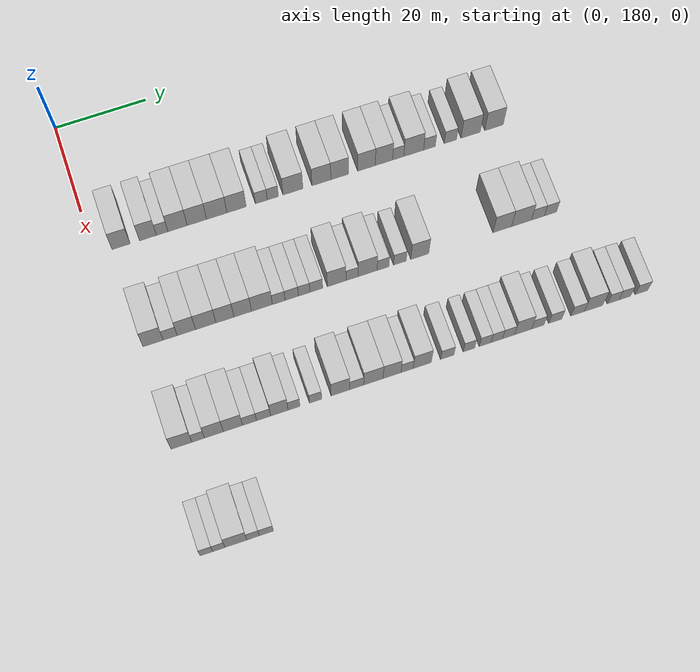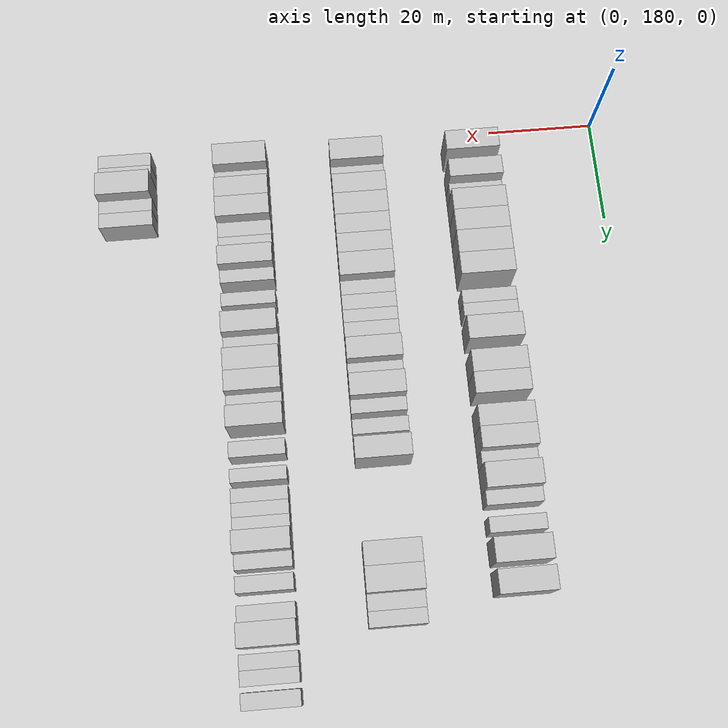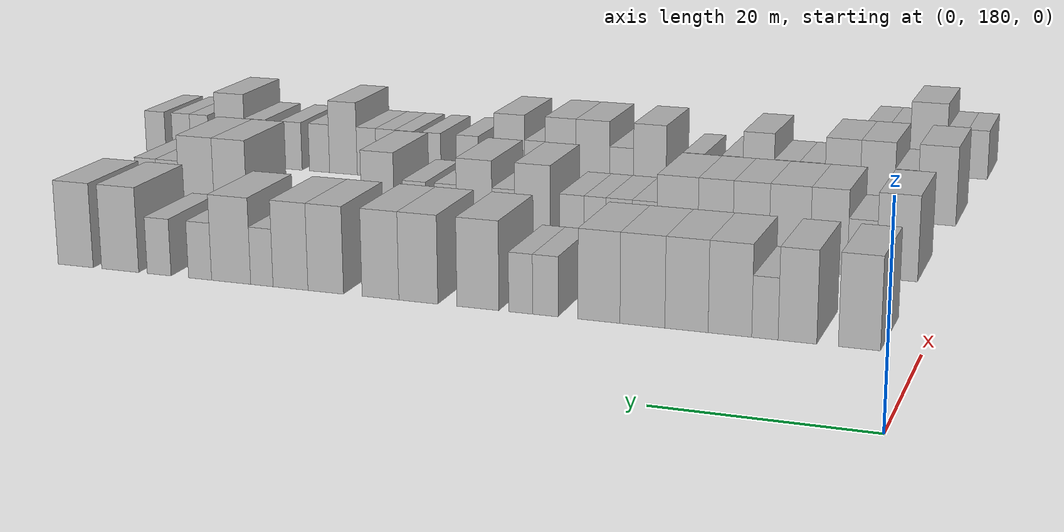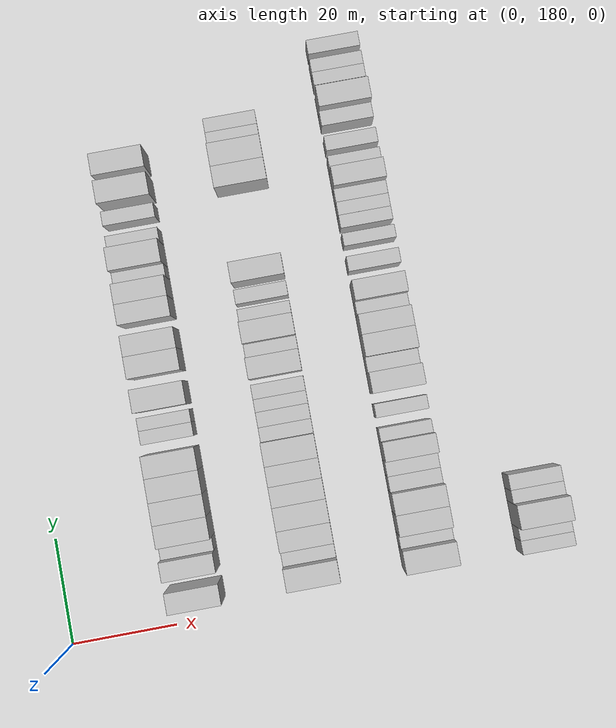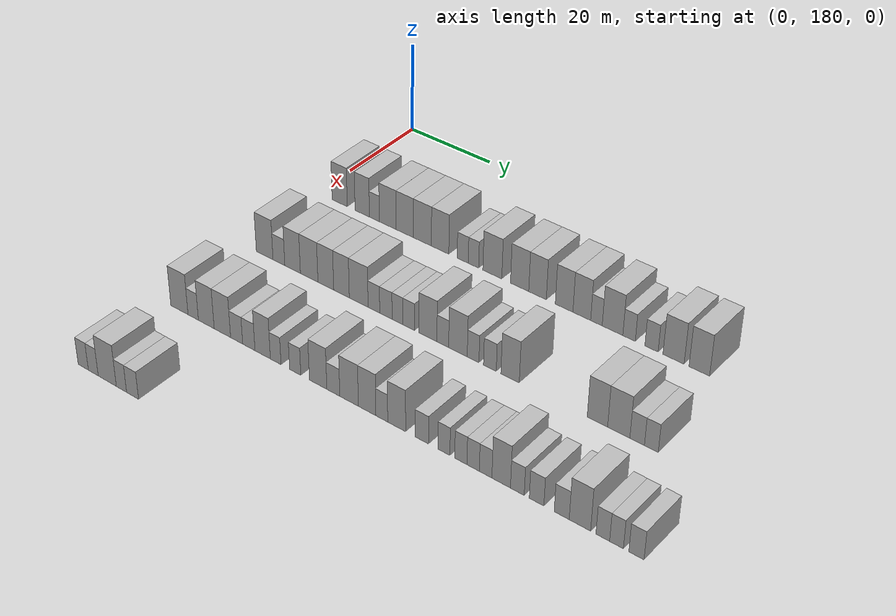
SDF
<sdf version="1.6">
 <world name="default">
  <model name="building_141">
   <static>1</static>
   <pose>25.0000 185.6581 0 0.000000 0.000000 0.000000</pose>
   <link name="link">
    <pose>0 0 4.50 0 0 0</pose>
    <collision name="collision"><geometry><box><size>10.0000 3.8897 9.0000</size></box></geometry></collision>
    <visual name="visual">
     <cast_shadows>0</cast_shadows>
     <geometry><box><size>10.0000 3.8897 9.0000</size></box></geometry>
     <material>
      <script>
       <uri>model://HANNAS_wall/materials/scripts</uri>
       <uri>model://HANNAS_wall/materials/textures</uri>
       <name>vrc/HANNAS_wall</name>
      </script>
     </material>
    </visual>
   </link>
  </model>
  <model name="building_142">
   <static>1</static>
   <pose>25.0000 191.4168 0 0.000000 0.000000 0.000000</pose>
   <link name="link">
    <pose>0 0 4.50 0 0 0</pose>
    <collision name="collision"><geometry><box><size>10.0000 3.6277 9.0000</size></box></geometry></collision>
    <visual name="visual">
     <cast_shadows>0</cast_shadows>
     <geometry><box><size>10.0000 3.6277 9.0000</size></box></geometry>
     <material>
      <script>
       <uri>model://HANNAS_wall/materials/scripts</uri>
       <uri>model://HANNAS_wall/materials/textures</uri>
       <name>vrc/HANNAS_wall</name>
      </script>
     </material>
    </visual>
   </link>
  </model>
  <model name="building_143">
   <static>1</static>
   <pose>25.0000 194.4795 0 0.000000 0.000000 0.000000</pose>
   <link name="link">
    <pose>0 0 3.00 0 0 0</pose>
    <collision name="collision"><geometry><box><size>10.0000 2.4977 6.0000</size></box></geometry></collision>
    <visual name="visual">
     <cast_shadows>0</cast_shadows>
     <geometry><box><size>10.0000 2.4977 6.0000</size></box></geometry>
     <material>
      <script>
       <uri>model://HANNAS_wall/materials/scripts</uri>
       <uri>model://HANNAS_wall/materials/textures</uri>
       <name>vrc/HANNAS_wall</name>
      </script>
     </material>
    </visual>
   </link>
  </model>
  <model name="building_144">
   <static>1</static>
   <pose>25.0000 197.8152 0 0.000000 0.000000 0.000000</pose>
   <link name="link">
    <pose>0 0 4.50 0 0 0</pose>
    <collision name="collision"><geometry><box><size>10.0000 4.1738 9.0000</size></box></geometry></collision>
    <visual name="visual">
     <cast_shadows>0</cast_shadows>
     <geometry><box><size>10.0000 4.1738 9.0000</size></box></geometry>
     <material>
      <script>
       <uri>model://HANNAS_wall/materials/scripts</uri>
       <uri>model://HANNAS_wall/materials/textures</uri>
       <name>vrc/HANNAS_wall</name>
      </script>
     </material>
    </visual>
   </link>
  </model>
  <model name="building_145">
   <static>1</static>
   <pose>25.0000 201.9993 0 0.000000 0.000000 0.000000</pose>
   <link name="link">
    <pose>0 0 4.50 0 0 0</pose>
    <collision name="collision"><geometry><box><size>10.0000 4.1942 9.0000</size></box></geometry></collision>
    <visual name="visual">
     <cast_shadows>0</cast_shadows>
     <geometry><box><size>10.0000 4.1942 9.0000</size></box></geometry>
     <material>
      <script>
       <uri>model://HANNAS_wall/materials/scripts</uri>
       <uri>model://HANNAS_wall/materials/textures</uri>
       <name>vrc/HANNAS_wall</name>
      </script>
     </material>
    </visual>
   </link>
  </model>
  <model name="building_146">
   <static>1</static>
   <pose>25.0000 206.3061 0 0.000000 0.000000 0.000000</pose>
   <link name="link">
    <pose>0 0 4.50 0 0 0</pose>
    <collision name="collision"><geometry><box><size>10.0000 4.4195 9.0000</size></box></geometry></collision>
    <visual name="visual">
     <cast_shadows>0</cast_shadows>
     <geometry><box><size>10.0000 4.4195 9.0000</size></box></geometry>
     <material>
      <script>
       <uri>model://HANNAS_wall/materials/scripts</uri>
       <uri>model://HANNAS_wall/materials/textures</uri>
       <name>vrc/HANNAS_wall</name>
      </script>
     </material>
    </visual>
   </link>
  </model>
  <model name="building_147">
   <static>1</static>
   <pose>25.0000 210.6101 0 0.000000 0.000000 0.000000</pose>
   <link name="link">
    <pose>0 0 4.50 0 0 0</pose>
    <collision name="collision"><geometry><box><size>10.0000 4.1884 9.0000</size></box></geometry></collision>
    <visual name="visual">
     <cast_shadows>0</cast_shadows>
     <geometry><box><size>10.0000 4.1884 9.0000</size></box></geometry>
     <material>
      <script>
       <uri>model://HANNAS_wall/materials/scripts</uri>
       <uri>model://HANNAS_wall/materials/textures</uri>
       <name>vrc/HANNAS_wall</name>
      </script>
     </material>
    </visual>
   </link>
  </model>
  <model name="building_148">
   <static>1</static>
   <pose>25.0000 216.0030 0 0.000000 0.000000 0.000000</pose>
   <link name="link">
    <pose>0 0 3.00 0 0 0</pose>
    <collision name="collision"><geometry><box><size>10.0000 2.5975 6.0000</size></box></geometry></collision>
    <visual name="visual">
     <cast_shadows>0</cast_shadows>
     <geometry><box><size>10.0000 2.5975 6.0000</size></box></geometry>
     <material>
      <script>
       <uri>model://HANNAS_wall/materials/scripts</uri>
       <uri>model://HANNAS_wall/materials/textures</uri>
       <name>vrc/HANNAS_wall</name>
      </script>
     </material>
    </visual>
   </link>
  </model>
  <model name="building_149">
   <static>1</static>
   <pose>25.0000 218.5219 0 0.000000 0.000000 0.000000</pose>
   <link name="link">
    <pose>0 0 3.00 0 0 0</pose>
    <collision name="collision"><geometry><box><size>10.0000 2.4403 6.0000</size></box></geometry></collision>
    <visual name="visual">
     <cast_shadows>0</cast_shadows>
     <geometry><box><size>10.0000 2.4403 6.0000</size></box></geometry>
     <material>
      <script>
       <uri>model://HANNAS_wall/materials/scripts</uri>
       <uri>model://HANNAS_wall/materials/textures</uri>
       <name>vrc/HANNAS_wall</name>
      </script>
     </material>
    </visual>
   </link>
  </model>
  <model name="building_150">
   <static>1</static>
   <pose>25.0000 222.9225 0 0.000000 0.000000 0.000000</pose>
   <link name="link">
    <pose>0 0 4.50 0 0 0</pose>
    <collision name="collision"><geometry><box><size>10.0000 4.3609 9.0000</size></box></geometry></collision>
    <visual name="visual">
     <cast_shadows>0</cast_shadows>
     <geometry><box><size>10.0000 4.3609 9.0000</size></box></geometry>
     <material>
      <script>
       <uri>model://HANNAS_wall/materials/scripts</uri>
       <uri>model://HANNAS_wall/materials/textures</uri>
       <name>vrc/HANNAS_wall</name>
      </script>
     </material>
    </visual>
   </link>
  </model>
  <model name="building_151">
   <static>1</static>
   <pose>25.0000 229.1690 0 0.000000 0.000000 0.000000</pose>
   <link name="link">
    <pose>0 0 4.50 0 0 0</pose>
    <collision name="collision"><geometry><box><size>10.0000 4.1322 9.0000</size></box></geometry></collision>
    <visual name="visual">
     <cast_shadows>0</cast_shadows>
     <geometry><box><size>10.0000 4.1322 9.0000</size></box></geometry>
     <material>
      <script>
       <uri>model://HANNAS_wall/materials/scripts</uri>
       <uri>model://HANNAS_wall/materials/textures</uri>
       <name>vrc/HANNAS_wall</name>
      </script>
     </material>
    </visual>
   </link>
  </model>
  <model name="building_152">
   <static>1</static>
   <pose>25.0000 233.2051 0 0.000000 0.000000 0.000000</pose>
   <link name="link">
    <pose>0 0 4.50 0 0 0</pose>
    <collision name="collision"><geometry><box><size>10.0000 3.9400 9.0000</size></box></geometry></collision>
    <visual name="visual">
     <cast_shadows>0</cast_shadows>
     <geometry><box><size>10.0000 3.9400 9.0000</size></box></geometry>
     <material>
      <script>
       <uri>model://HANNAS_wall/materials/scripts</uri>
       <uri>model://HANNAS_wall/materials/textures</uri>
       <name>vrc/HANNAS_wall</name>
      </script>
     </material>
    </visual>
   </link>
  </model>
  <model name="building_153">
   <static>1</static>
   <pose>25.0000 239.1184 0 0.000000 0.000000 0.000000</pose>
   <link name="link">
    <pose>0 0 4.50 0 0 0</pose>
    <collision name="collision"><geometry><box><size>10.0000 3.8865 9.0000</size></box></geometry></collision>
    <visual name="visual">
     <cast_shadows>0</cast_shadows>
     <geometry><box><size>10.0000 3.8865 9.0000</size></box></geometry>
     <material>
      <script>
       <uri>model://HANNAS_wall/materials/scripts</uri>
       <uri>model://HANNAS_wall/materials/textures</uri>
       <name>vrc/HANNAS_wall</name>
      </script>
     </material>
    </visual>
   </link>
  </model>
  <model name="building_154">
   <static>1</static>
   <pose>25.0000 242.9917 0 0.000000 0.000000 0.000000</pose>
   <link name="link">
    <pose>0 0 4.50 0 0 0</pose>
    <collision name="collision"><geometry><box><size>10.0000 3.8602 9.0000</size></box></geometry></collision>
    <visual name="visual">
     <cast_shadows>0</cast_shadows>
     <geometry><box><size>10.0000 3.8602 9.0000</size></box></geometry>
     <material>
      <script>
       <uri>model://HANNAS_wall/materials/scripts</uri>
       <uri>model://HANNAS_wall/materials/textures</uri>
       <name>vrc/HANNAS_wall</name>
      </script>
     </material>
    </visual>
   </link>
  </model>
  <model name="building_155">
   <static>1</static>
   <pose>25.0000 246.1652 0 0.000000 0.000000 0.000000</pose>
   <link name="link">
    <pose>0 0 3.00 0 0 0</pose>
    <collision name="collision"><geometry><box><size>10.0000 2.4868 6.0000</size></box></geometry></collision>
    <visual name="visual">
     <cast_shadows>0</cast_shadows>
     <geometry><box><size>10.0000 2.4868 6.0000</size></box></geometry>
     <material>
      <script>
       <uri>model://HANNAS_wall/materials/scripts</uri>
       <uri>model://HANNAS_wall/materials/textures</uri>
       <name>vrc/HANNAS_wall</name>
      </script>
     </material>
    </visual>
   </link>
  </model>
  <model name="building_156">
   <static>1</static>
   <pose>25.0000 249.6118 0 0.000000 0.000000 0.000000</pose>
   <link name="link">
    <pose>0 0 4.50 0 0 0</pose>
    <collision name="collision"><geometry><box><size>10.0000 4.4063 9.0000</size></box></geometry></collision>
    <visual name="visual">
     <cast_shadows>0</cast_shadows>
     <geometry><box><size>10.0000 4.4063 9.0000</size></box></geometry>
     <material>
      <script>
       <uri>model://HANNAS_wall/materials/scripts</uri>
       <uri>model://HANNAS_wall/materials/textures</uri>
       <name>vrc/HANNAS_wall</name>
      </script>
     </material>
    </visual>
   </link>
  </model>
  <model name="building_157">
   <static>1</static>
   <pose>25.0000 253.1297 0 0.000000 0.000000 0.000000</pose>
   <link name="link">
    <pose>0 0 3.00 0 0 0</pose>
    <collision name="collision"><geometry><box><size>10.0000 2.6294 6.0000</size></box></geometry></collision>
    <visual name="visual">
     <cast_shadows>0</cast_shadows>
     <geometry><box><size>10.0000 2.6294 6.0000</size></box></geometry>
     <material>
      <script>
       <uri>model://HANNAS_wall/materials/scripts</uri>
       <uri>model://HANNAS_wall/materials/textures</uri>
       <name>vrc/HANNAS_wall</name>
      </script>
     </material>
    </visual>
   </link>
  </model>
  <model name="building_158">
   <static>1</static>
   <pose>25.0000 257.8196 0 0.000000 0.000000 0.000000</pose>
   <link name="link">
    <pose>0 0 3.00 0 0 0</pose>
    <collision name="collision"><geometry><box><size>10.0000 2.7505 6.0000</size></box></geometry></collision>
    <visual name="visual">
     <cast_shadows>0</cast_shadows>
     <geometry><box><size>10.0000 2.7505 6.0000</size></box></geometry>
     <material>
      <script>
       <uri>model://HANNAS_wall/materials/scripts</uri>
       <uri>model://HANNAS_wall/materials/textures</uri>
       <name>vrc/HANNAS_wall</name>
      </script>
     </material>
    </visual>
   </link>
  </model>
  <model name="building_159">
   <static>1</static>
   <pose>25.0000 262.3622 0 0.000000 0.000000 0.000000</pose>
   <link name="link">
    <pose>0 0 4.50 0 0 0</pose>
    <collision name="collision"><geometry><box><size>10.0000 4.3346 9.0000</size></box></geometry></collision>
    <visual name="visual">
     <cast_shadows>0</cast_shadows>
     <geometry><box><size>10.0000 4.3346 9.0000</size></box></geometry>
     <material>
      <script>
       <uri>model://HANNAS_wall/materials/scripts</uri>
       <uri>model://HANNAS_wall/materials/textures</uri>
       <name>vrc/HANNAS_wall</name>
      </script>
     </material>
    </visual>
   </link>
  </model>
  <model name="building_160">
   <static>1</static>
   <pose>25.0000 267.6069 0 0.000000 0.000000 0.000000</pose>
   <link name="link">
    <pose>0 0 4.50 0 0 0</pose>
    <collision name="collision"><geometry><box><size>10.0000 4.1548 9.0000</size></box></geometry></collision>
    <visual name="visual">
     <cast_shadows>0</cast_shadows>
     <geometry><box><size>10.0000 4.1548 9.0000</size></box></geometry>
     <material>
      <script>
       <uri>model://HANNAS_wall/materials/scripts</uri>
       <uri>model://HANNAS_wall/materials/textures</uri>
       <name>vrc/HANNAS_wall</name>
      </script>
     </material>
    </visual>
   </link>
  </model>
  <model name="building_324">
   <static>1</static>
   <pose>47.0000 185.8682 0 0.000000 0.000000 0.000000</pose>
   <link name="link">
    <pose>0 0 4.50 0 0 0</pose>
    <collision name="collision"><geometry><box><size>10.0000 4.2317 9.0000</size></box></geometry></collision>
    <visual name="visual">
     <cast_shadows>0</cast_shadows>
     <geometry><box><size>10.0000 4.2317 9.0000</size></box></geometry>
     <material>
      <script>
       <uri>model://HANNAS_wall/materials/scripts</uri>
       <uri>model://HANNAS_wall/materials/textures</uri>
       <name>vrc/HANNAS_wall</name>
      </script>
     </material>
    </visual>
   </link>
  </model>
  <model name="building_325">
   <static>1</static>
   <pose>47.0000 189.4722 0 0.000000 0.000000 0.000000</pose>
   <link name="link">
    <pose>0 0 3.00 0 0 0</pose>
    <collision name="collision"><geometry><box><size>10.0000 2.9763 6.0000</size></box></geometry></collision>
    <visual name="visual">
     <cast_shadows>0</cast_shadows>
     <geometry><box><size>10.0000 2.9763 6.0000</size></box></geometry>
     <material>
      <script>
       <uri>model://HANNAS_wall/materials/scripts</uri>
       <uri>model://HANNAS_wall/materials/textures</uri>
       <name>vrc/HANNAS_wall</name>
      </script>
     </material>
    </visual>
   </link>
  </model>
  <model name="building_326">
   <static>1</static>
   <pose>47.0000 192.9023 0 0.000000 0.000000 0.000000</pose>
   <link name="link">
    <pose>0 0 4.50 0 0 0</pose>
    <collision name="collision"><geometry><box><size>10.0000 3.8839 9.0000</size></box></geometry></collision>
    <visual name="visual">
     <cast_shadows>0</cast_shadows>
     <geometry><box><size>10.0000 3.8839 9.0000</size></box></geometry>
     <material>
      <script>
       <uri>model://HANNAS_wall/materials/scripts</uri>
       <uri>model://HANNAS_wall/materials/textures</uri>
       <name>vrc/HANNAS_wall</name>
      </script>
     </material>
    </visual>
   </link>
  </model>
  <model name="building_327">
   <static>1</static>
   <pose>47.0000 197.0050 0 0.000000 0.000000 0.000000</pose>
   <link name="link">
    <pose>0 0 4.50 0 0 0</pose>
    <collision name="collision"><geometry><box><size>10.0000 4.3214 9.0000</size></box></geometry></collision>
    <visual name="visual">
     <cast_shadows>0</cast_shadows>
     <geometry><box><size>10.0000 4.3214 9.0000</size></box></geometry>
     <material>
      <script>
       <uri>model://HANNAS_wall/materials/scripts</uri>
       <uri>model://HANNAS_wall/materials/textures</uri>
       <name>vrc/HANNAS_wall</name>
      </script>
     </material>
    </visual>
   </link>
  </model>
  <model name="building_328">
   <static>1</static>
   <pose>47.0000 201.0848 0 0.000000 0.000000 0.000000</pose>
   <link name="link">
    <pose>0 0 4.50 0 0 0</pose>
    <collision name="collision"><geometry><box><size>10.0000 3.8383 9.0000</size></box></geometry></collision>
    <visual name="visual">
     <cast_shadows>0</cast_shadows>
     <geometry><box><size>10.0000 3.8383 9.0000</size></box></geometry>
     <material>
      <script>
       <uri>model://HANNAS_wall/materials/scripts</uri>
       <uri>model://HANNAS_wall/materials/textures</uri>
       <name>vrc/HANNAS_wall</name>
      </script>
     </material>
    </visual>
   </link>
  </model>
  <model name="building_329">
   <static>1</static>
   <pose>47.0000 204.8768 0 0.000000 0.000000 0.000000</pose>
   <link name="link">
    <pose>0 0 4.50 0 0 0</pose>
    <collision name="collision"><geometry><box><size>10.0000 3.7457 9.0000</size></box></geometry></collision>
    <visual name="visual">
     <cast_shadows>0</cast_shadows>
     <geometry><box><size>10.0000 3.7457 9.0000</size></box></geometry>
     <material>
      <script>
       <uri>model://HANNAS_wall/materials/scripts</uri>
       <uri>model://HANNAS_wall/materials/textures</uri>
       <name>vrc/HANNAS_wall</name>
      </script>
     </material>
    </visual>
   </link>
  </model>
  <model name="building_330">
   <static>1</static>
   <pose>47.0000 208.9752 0 0.000000 0.000000 0.000000</pose>
   <link name="link">
    <pose>0 0 4.50 0 0 0</pose>
    <collision name="collision"><geometry><box><size>10.0000 4.4510 9.0000</size></box></geometry></collision>
    <visual name="visual">
     <cast_shadows>0</cast_shadows>
     <geometry><box><size>10.0000 4.4510 9.0000</size></box></geometry>
     <material>
      <script>
       <uri>model://HANNAS_wall/materials/scripts</uri>
       <uri>model://HANNAS_wall/materials/textures</uri>
       <name>vrc/HANNAS_wall</name>
      </script>
     </material>
    </visual>
   </link>
  </model>
  <model name="building_331">
   <static>1</static>
   <pose>47.0000 212.5686 0 0.000000 0.000000 0.000000</pose>
   <link name="link">
    <pose>0 0 3.00 0 0 0</pose>
    <collision name="collision"><geometry><box><size>10.0000 2.7358 6.0000</size></box></geometry></collision>
    <visual name="visual">
     <cast_shadows>0</cast_shadows>
     <geometry><box><size>10.0000 2.7358 6.0000</size></box></geometry>
     <material>
      <script>
       <uri>model://HANNAS_wall/materials/scripts</uri>
       <uri>model://HANNAS_wall/materials/textures</uri>
       <name>vrc/HANNAS_wall</name>
      </script>
     </material>
    </visual>
   </link>
  </model>
  <model name="building_332">
   <static>1</static>
   <pose>47.0000 215.3776 0 0.000000 0.000000 0.000000</pose>
   <link name="link">
    <pose>0 0 3.00 0 0 0</pose>
    <collision name="collision"><geometry><box><size>10.0000 2.8823 6.0000</size></box></geometry></collision>
    <visual name="visual">
     <cast_shadows>0</cast_shadows>
     <geometry><box><size>10.0000 2.8823 6.0000</size></box></geometry>
     <material>
      <script>
       <uri>model://HANNAS_wall/materials/scripts</uri>
       <uri>model://HANNAS_wall/materials/textures</uri>
       <name>vrc/HANNAS_wall</name>
      </script>
     </material>
    </visual>
   </link>
  </model>
  <model name="building_333">
   <static>1</static>
   <pose>47.0000 218.0370 0 0.000000 0.000000 0.000000</pose>
   <link name="link">
    <pose>0 0 3.00 0 0 0</pose>
    <collision name="collision"><geometry><box><size>10.0000 2.4365 6.0000</size></box></geometry></collision>
    <visual name="visual">
     <cast_shadows>0</cast_shadows>
     <geometry><box><size>10.0000 2.4365 6.0000</size></box></geometry>
     <material>
      <script>
       <uri>model://HANNAS_wall/materials/scripts</uri>
       <uri>model://HANNAS_wall/materials/textures</uri>
       <name>vrc/HANNAS_wall</name>
      </script>
     </material>
    </visual>
   </link>
  </model>
  <model name="building_334">
   <static>1</static>
   <pose>47.0000 220.6344 0 0.000000 0.000000 0.000000</pose>
   <link name="link">
    <pose>0 0 3.00 0 0 0</pose>
    <collision name="collision"><geometry><box><size>10.0000 2.7582 6.0000</size></box></geometry></collision>
    <visual name="visual">
     <cast_shadows>0</cast_shadows>
     <geometry><box><size>10.0000 2.7582 6.0000</size></box></geometry>
     <material>
      <script>
       <uri>model://HANNAS_wall/materials/scripts</uri>
       <uri>model://HANNAS_wall/materials/textures</uri>
       <name>vrc/HANNAS_wall</name>
      </script>
     </material>
    </visual>
   </link>
  </model>
  <model name="building_335">
   <static>1</static>
   <pose>47.0000 225.0306 0 0.000000 0.000000 0.000000</pose>
   <link name="link">
    <pose>0 0 4.50 0 0 0</pose>
    <collision name="collision"><geometry><box><size>10.0000 4.0342 9.0000</size></box></geometry></collision>
    <visual name="visual">
     <cast_shadows>0</cast_shadows>
     <geometry><box><size>10.0000 4.0342 9.0000</size></box></geometry>
     <material>
      <script>
       <uri>model://HANNAS_wall/materials/scripts</uri>
       <uri>model://HANNAS_wall/materials/textures</uri>
       <name>vrc/HANNAS_wall</name>
      </script>
     </material>
    </visual>
   </link>
  </model>
  <model name="building_336">
   <static>1</static>
   <pose>47.0000 228.3651 0 0.000000 0.000000 0.000000</pose>
   <link name="link">
    <pose>0 0 3.00 0 0 0</pose>
    <collision name="collision"><geometry><box><size>10.0000 2.6349 6.0000</size></box></geometry></collision>
    <visual name="visual">
     <cast_shadows>0</cast_shadows>
     <geometry><box><size>10.0000 2.6349 6.0000</size></box></geometry>
     <material>
      <script>
       <uri>model://HANNAS_wall/materials/scripts</uri>
       <uri>model://HANNAS_wall/materials/textures</uri>
       <name>vrc/HANNAS_wall</name>
      </script>
     </material>
    </visual>
   </link>
  </model>
  <model name="building_337">
   <static>1</static>
   <pose>47.0000 231.7374 0 0.000000 0.000000 0.000000</pose>
   <link name="link">
    <pose>0 0 4.50 0 0 0</pose>
    <collision name="collision"><geometry><box><size>10.0000 4.1096 9.0000</size></box></geometry></collision>
    <visual name="visual">
     <cast_shadows>0</cast_shadows>
     <geometry><box><size>10.0000 4.1096 9.0000</size></box></geometry>
     <material>
      <script>
       <uri>model://HANNAS_wall/materials/scripts</uri>
       <uri>model://HANNAS_wall/materials/textures</uri>
       <name>vrc/HANNAS_wall</name>
      </script>
     </material>
    </visual>
   </link>
  </model>
  <model name="building_338">
   <static>1</static>
   <pose>47.0000 235.0759 0 0.000000 0.000000 0.000000</pose>
   <link name="link">
    <pose>0 0 3.00 0 0 0</pose>
    <collision name="collision"><geometry><box><size>10.0000 2.5674 6.0000</size></box></geometry></collision>
    <visual name="visual">
     <cast_shadows>0</cast_shadows>
     <geometry><box><size>10.0000 2.5674 6.0000</size></box></geometry>
     <material>
      <script>
       <uri>model://HANNAS_wall/materials/scripts</uri>
       <uri>model://HANNAS_wall/materials/textures</uri>
       <name>vrc/HANNAS_wall</name>
      </script>
     </material>
    </visual>
   </link>
  </model>
  <model name="building_339">
   <static>1</static>
   <pose>47.0000 238.7392 0 0.000000 0.000000 0.000000</pose>
   <link name="link">
    <pose>0 0 3.00 0 0 0</pose>
    <collision name="collision"><geometry><box><size>10.0000 2.7592 6.0000</size></box></geometry></collision>
    <visual name="visual">
     <cast_shadows>0</cast_shadows>
     <geometry><box><size>10.0000 2.7592 6.0000</size></box></geometry>
     <material>
      <script>
       <uri>model://HANNAS_wall/materials/scripts</uri>
       <uri>model://HANNAS_wall/materials/textures</uri>
       <name>vrc/HANNAS_wall</name>
      </script>
     </material>
    </visual>
   </link>
  </model>
  <model name="building_340">
   <static>1</static>
   <pose>47.0000 243.0774 0 0.000000 0.000000 0.000000</pose>
   <link name="link">
    <pose>0 0 4.50 0 0 0</pose>
    <collision name="collision"><geometry><box><size>10.0000 3.9173 9.0000</size></box></geometry></collision>
    <visual name="visual">
     <cast_shadows>0</cast_shadows>
     <geometry><box><size>10.0000 3.9173 9.0000</size></box></geometry>
     <material>
      <script>
       <uri>model://HANNAS_wall/materials/scripts</uri>
       <uri>model://HANNAS_wall/materials/textures</uri>
       <name>vrc/HANNAS_wall</name>
      </script>
     </material>
    </visual>
   </link>
  </model>
  <model name="building_341">
   <static>1</static>
   <pose>47.0000 261.1963 0 0.000000 0.000000 0.000000</pose>
   <link name="link">
    <pose>0 0 4.50 0 0 0</pose>
    <collision name="collision"><geometry><box><size>10.0000 4.1068 9.0000</size></box></geometry></collision>
    <visual name="visual">
     <cast_shadows>0</cast_shadows>
     <geometry><box><size>10.0000 4.1068 9.0000</size></box></geometry>
     <material>
      <script>
       <uri>model://HANNAS_wall/materials/scripts</uri>
       <uri>model://HANNAS_wall/materials/textures</uri>
       <name>vrc/HANNAS_wall</name>
      </script>
     </material>
    </visual>
   </link>
  </model>
  <model name="building_342">
   <static>1</static>
   <pose>47.0000 265.4566 0 0.000000 0.000000 0.000000</pose>
   <link name="link">
    <pose>0 0 4.50 0 0 0</pose>
    <collision name="collision"><geometry><box><size>10.0000 4.4137 9.0000</size></box></geometry></collision>
    <visual name="visual">
     <cast_shadows>0</cast_shadows>
     <geometry><box><size>10.0000 4.4137 9.0000</size></box></geometry>
     <material>
      <script>
       <uri>model://HANNAS_wall/materials/scripts</uri>
       <uri>model://HANNAS_wall/materials/textures</uri>
       <name>vrc/HANNAS_wall</name>
      </script>
     </material>
    </visual>
   </link>
  </model>
  <model name="building_343">
   <static>1</static>
   <pose>47.0000 269.0933 0 0.000000 0.000000 0.000000</pose>
   <link name="link">
    <pose>0 0 3.00 0 0 0</pose>
    <collision name="collision"><geometry><box><size>10.0000 2.8597 6.0000</size></box></geometry></collision>
    <visual name="visual">
     <cast_shadows>0</cast_shadows>
     <geometry><box><size>10.0000 2.8597 6.0000</size></box></geometry>
     <material>
      <script>
       <uri>model://HANNAS_wall/materials/scripts</uri>
       <uri>model://HANNAS_wall/materials/textures</uri>
       <name>vrc/HANNAS_wall</name>
      </script>
     </material>
    </visual>
   </link>
  </model>
  <model name="building_344">
   <static>1</static>
   <pose>47.0000 271.8658 0 0.000000 0.000000 0.000000</pose>
   <link name="link">
    <pose>0 0 3.00 0 0 0</pose>
    <collision name="collision"><geometry><box><size>10.0000 2.6852 6.0000</size></box></geometry></collision>
    <visual name="visual">
     <cast_shadows>0</cast_shadows>
     <geometry><box><size>10.0000 2.6852 6.0000</size></box></geometry>
     <material>
      <script>
       <uri>model://HANNAS_wall/materials/scripts</uri>
       <uri>model://HANNAS_wall/materials/textures</uri>
       <name>vrc/HANNAS_wall</name>
      </script>
     </material>
    </visual>
   </link>
  </model>
  <model name="building_509">
   <static>1</static>
   <pose>69.0000 185.0893 0 0.000000 0.000000 0.000000</pose>
   <link name="link">
    <pose>0 0 4.50 0 0 0</pose>
    <collision name="collision"><geometry><box><size>10.0000 4.3271 9.0000</size></box></geometry></collision>
    <visual name="visual">
     <cast_shadows>0</cast_shadows>
     <geometry><box><size>10.0000 4.3271 9.0000</size></box></geometry>
     <material>
      <script>
       <uri>model://HANNAS_wall/materials/scripts</uri>
       <uri>model://HANNAS_wall/materials/textures</uri>
       <name>vrc/HANNAS_wall</name>
      </script>
     </material>
    </visual>
   </link>
  </model>
  <model name="building_510">
   <static>1</static>
   <pose>69.0000 188.5548 0 0.000000 0.000000 0.000000</pose>
   <link name="link">
    <pose>0 0 3.00 0 0 0</pose>
    <collision name="collision"><geometry><box><size>10.0000 2.6041 6.0000</size></box></geometry></collision>
    <visual name="visual">
     <cast_shadows>0</cast_shadows>
     <geometry><box><size>10.0000 2.6041 6.0000</size></box></geometry>
     <material>
      <script>
       <uri>model://HANNAS_wall/materials/scripts</uri>
       <uri>model://HANNAS_wall/materials/textures</uri>
       <name>vrc/HANNAS_wall</name>
      </script>
     </material>
    </visual>
   </link>
  </model>
  <model name="building_511">
   <static>1</static>
   <pose>69.0000 191.8102 0 0.000000 0.000000 0.000000</pose>
   <link name="link">
    <pose>0 0 4.50 0 0 0</pose>
    <collision name="collision"><geometry><box><size>10.0000 3.9066 9.0000</size></box></geometry></collision>
    <visual name="visual">
     <cast_shadows>0</cast_shadows>
     <geometry><box><size>10.0000 3.9066 9.0000</size></box></geometry>
     <material>
      <script>
       <uri>model://HANNAS_wall/materials/scripts</uri>
       <uri>model://HANNAS_wall/materials/textures</uri>
       <name>vrc/HANNAS_wall</name>
      </script>
     </material>
    </visual>
   </link>
  </model>
  <model name="building_512">
   <static>1</static>
   <pose>69.0000 195.7671 0 0.000000 0.000000 0.000000</pose>
   <link name="link">
    <pose>0 0 4.50 0 0 0</pose>
    <collision name="collision"><geometry><box><size>10.0000 4.0072 9.0000</size></box></geometry></collision>
    <visual name="visual">
     <cast_shadows>0</cast_shadows>
     <geometry><box><size>10.0000 4.0072 9.0000</size></box></geometry>
     <material>
      <script>
       <uri>model://HANNAS_wall/materials/scripts</uri>
       <uri>model://HANNAS_wall/materials/textures</uri>
       <name>vrc/HANNAS_wall</name>
      </script>
     </material>
    </visual>
   </link>
  </model>
  <model name="building_513">
   <static>1</static>
   <pose>69.0000 199.2321 0 0.000000 0.000000 0.000000</pose>
   <link name="link">
    <pose>0 0 3.00 0 0 0</pose>
    <collision name="collision"><geometry><box><size>10.0000 2.9228 6.0000</size></box></geometry></collision>
    <visual name="visual">
     <cast_shadows>0</cast_shadows>
     <geometry><box><size>10.0000 2.9228 6.0000</size></box></geometry>
     <material>
      <script>
       <uri>model://HANNAS_wall/materials/scripts</uri>
       <uri>model://HANNAS_wall/materials/textures</uri>
       <name>vrc/HANNAS_wall</name>
      </script>
     </material>
    </visual>
   </link>
  </model>
  <model name="building_514">
   <static>1</static>
   <pose>69.0000 202.1665 0 0.000000 0.000000 0.000000</pose>
   <link name="link">
    <pose>0 0 3.00 0 0 0</pose>
    <collision name="collision"><geometry><box><size>10.0000 2.9462 6.0000</size></box></geometry></collision>
    <visual name="visual">
     <cast_shadows>0</cast_shadows>
     <geometry><box><size>10.0000 2.9462 6.0000</size></box></geometry>
     <material>
      <script>
       <uri>model://HANNAS_wall/materials/scripts</uri>
       <uri>model://HANNAS_wall/materials/textures</uri>
       <name>vrc/HANNAS_wall</name>
      </script>
     </material>
    </visual>
   </link>
  </model>
  <model name="building_515">
   <static>1</static>
   <pose>69.0000 205.4632 0 0.000000 0.000000 0.000000</pose>
   <link name="link">
    <pose>0 0 4.50 0 0 0</pose>
    <collision name="collision"><geometry><box><size>10.0000 3.6472 9.0000</size></box></geometry></collision>
    <visual name="visual">
     <cast_shadows>0</cast_shadows>
     <geometry><box><size>10.0000 3.6472 9.0000</size></box></geometry>
     <material>
      <script>
       <uri>model://HANNAS_wall/materials/scripts</uri>
       <uri>model://HANNAS_wall/materials/textures</uri>
       <name>vrc/HANNAS_wall</name>
      </script>
     </material>
    </visual>
   </link>
  </model>
  <model name="building_516">
   <static>1</static>
   <pose>69.0000 208.5367 0 0.000000 0.000000 0.000000</pose>
   <link name="link">
    <pose>0 0 3.00 0 0 0</pose>
    <collision name="collision"><geometry><box><size>10.0000 2.4998 6.0000</size></box></geometry></collision>
    <visual name="visual">
     <cast_shadows>0</cast_shadows>
     <geometry><box><size>10.0000 2.4998 6.0000</size></box></geometry>
     <material>
      <script>
       <uri>model://HANNAS_wall/materials/scripts</uri>
       <uri>model://HANNAS_wall/materials/textures</uri>
       <name>vrc/HANNAS_wall</name>
      </script>
     </material>
    </visual>
   </link>
  </model>
  <model name="building_517">
   <static>1</static>
   <pose>69.0000 213.0772 0 0.000000 0.000000 0.000000</pose>
   <link name="link">
    <pose>0 0 3.00 0 0 0</pose>
    <collision name="collision"><geometry><box><size>10.0000 2.5811 6.0000</size></box></geometry></collision>
    <visual name="visual">
     <cast_shadows>0</cast_shadows>
     <geometry><box><size>10.0000 2.5811 6.0000</size></box></geometry>
     <material>
      <script>
       <uri>model://HANNAS_wall/materials/scripts</uri>
       <uri>model://HANNAS_wall/materials/textures</uri>
       <name>vrc/HANNAS_wall</name>
      </script>
     </material>
    </visual>
   </link>
  </model>
  <model name="building_518">
   <static>1</static>
   <pose>69.0000 218.3455 0 0.000000 0.000000 0.000000</pose>
   <link name="link">
    <pose>0 0 4.50 0 0 0</pose>
    <collision name="collision"><geometry><box><size>10.0000 3.9556 9.0000</size></box></geometry></collision>
    <visual name="visual">
     <cast_shadows>0</cast_shadows>
     <geometry><box><size>10.0000 3.9556 9.0000</size></box></geometry>
     <material>
      <script>
       <uri>model://HANNAS_wall/materials/scripts</uri>
       <uri>model://HANNAS_wall/materials/textures</uri>
       <name>vrc/HANNAS_wall</name>
      </script>
     </material>
    </visual>
   </link>
  </model>
  <model name="building_519">
   <static>1</static>
   <pose>69.0000 221.7808 0 0.000000 0.000000 0.000000</pose>
   <link name="link">
    <pose>0 0 3.00 0 0 0</pose>
    <collision name="collision"><geometry><box><size>10.0000 2.9151 6.0000</size></box></geometry></collision>
    <visual name="visual">
     <cast_shadows>0</cast_shadows>
     <geometry><box><size>10.0000 2.9151 6.0000</size></box></geometry>
     <material>
      <script>
       <uri>model://HANNAS_wall/materials/scripts</uri>
       <uri>model://HANNAS_wall/materials/textures</uri>
       <name>vrc/HANNAS_wall</name>
      </script>
     </material>
    </visual>
   </link>
  </model>
  <model name="building_520">
   <static>1</static>
   <pose>69.0000 225.3056 0 0.000000 0.000000 0.000000</pose>
   <link name="link">
    <pose>0 0 4.50 0 0 0</pose>
    <collision name="collision"><geometry><box><size>10.0000 4.1343 9.0000</size></box></geometry></collision>
    <visual name="visual">
     <cast_shadows>0</cast_shadows>
     <geometry><box><size>10.0000 4.1343 9.0000</size></box></geometry>
     <material>
      <script>
       <uri>model://HANNAS_wall/materials/scripts</uri>
       <uri>model://HANNAS_wall/materials/textures</uri>
       <name>vrc/HANNAS_wall</name>
      </script>
     </material>
    </visual>
   </link>
  </model>
  <model name="building_521">
   <static>1</static>
   <pose>69.0000 229.2890 0 0.000000 0.000000 0.000000</pose>
   <link name="link">
    <pose>0 0 4.50 0 0 0</pose>
    <collision name="collision"><geometry><box><size>10.0000 3.8325 9.0000</size></box></geometry></collision>
    <visual name="visual">
     <cast_shadows>0</cast_shadows>
     <geometry><box><size>10.0000 3.8325 9.0000</size></box></geometry>
     <material>
      <script>
       <uri>model://HANNAS_wall/materials/scripts</uri>
       <uri>model://HANNAS_wall/materials/textures</uri>
       <name>vrc/HANNAS_wall</name>
      </script>
     </material>
    </visual>
   </link>
  </model>
  <model name="building_522">
   <static>1</static>
   <pose>69.0000 232.4949 0 0.000000 0.000000 0.000000</pose>
   <link name="link">
    <pose>0 0 3.00 0 0 0</pose>
    <collision name="collision"><geometry><box><size>10.0000 2.5792 6.0000</size></box></geometry></collision>
    <visual name="visual">
     <cast_shadows>0</cast_shadows>
     <geometry><box><size>10.0000 2.5792 6.0000</size></box></geometry>
     <material>
      <script>
       <uri>model://HANNAS_wall/materials/scripts</uri>
       <uri>model://HANNAS_wall/materials/textures</uri>
       <name>vrc/HANNAS_wall</name>
      </script>
     </material>
    </visual>
   </link>
  </model>
  <model name="building_523">
   <static>1</static>
   <pose>69.0000 235.7084 0 0.000000 0.000000 0.000000</pose>
   <link name="link">
    <pose>0 0 4.50 0 0 0</pose>
    <collision name="collision"><geometry><box><size>10.0000 3.8479 9.0000</size></box></geometry></collision>
    <visual name="visual">
     <cast_shadows>0</cast_shadows>
     <geometry><box><size>10.0000 3.8479 9.0000</size></box></geometry>
     <material>
      <script>
       <uri>model://HANNAS_wall/materials/scripts</uri>
       <uri>model://HANNAS_wall/materials/textures</uri>
       <name>vrc/HANNAS_wall</name>
      </script>
     </material>
    </visual>
   </link>
  </model>
  <model name="building_524">
   <static>1</static>
   <pose>69.0000 241.0593 0 0.000000 0.000000 0.000000</pose>
   <link name="link">
    <pose>0 0 3.00 0 0 0</pose>
    <collision name="collision"><geometry><box><size>10.0000 2.8540 6.0000</size></box></geometry></collision>
    <visual name="visual">
     <cast_shadows>0</cast_shadows>
     <geometry><box><size>10.0000 2.8540 6.0000</size></box></geometry>
     <material>
      <script>
       <uri>model://HANNAS_wall/materials/scripts</uri>
       <uri>model://HANNAS_wall/materials/textures</uri>
       <name>vrc/HANNAS_wall</name>
      </script>
     </material>
    </visual>
   </link>
  </model>
  <model name="building_525">
   <static>1</static>
   <pose>69.0000 245.7176 0 0.000000 0.000000 0.000000</pose>
   <link name="link">
    <pose>0 0 3.00 0 0 0</pose>
    <collision name="collision"><geometry><box><size>10.0000 2.4625 6.0000</size></box></geometry></collision>
    <visual name="visual">
     <cast_shadows>0</cast_shadows>
     <geometry><box><size>10.0000 2.4625 6.0000</size></box></geometry>
     <material>
      <script>
       <uri>model://HANNAS_wall/materials/scripts</uri>
       <uri>model://HANNAS_wall/materials/textures</uri>
       <name>vrc/HANNAS_wall</name>
      </script>
     </material>
    </visual>
   </link>
  </model>
  <model name="building_526">
   <static>1</static>
   <pose>69.0000 249.2020 0 0.000000 0.000000 0.000000</pose>
   <link name="link">
    <pose>0 0 3.00 0 0 0</pose>
    <collision name="collision"><geometry><box><size>10.0000 2.5063 6.0000</size></box></geometry></collision>
    <visual name="visual">
     <cast_shadows>0</cast_shadows>
     <geometry><box><size>10.0000 2.5063 6.0000</size></box></geometry>
     <material>
      <script>
       <uri>model://HANNAS_wall/materials/scripts</uri>
       <uri>model://HANNAS_wall/materials/textures</uri>
       <name>vrc/HANNAS_wall</name>
      </script>
     </material>
    </visual>
   </link>
  </model>
  <model name="building_527">
   <static>1</static>
   <pose>69.0000 251.7160 0 0.000000 0.000000 0.000000</pose>
   <link name="link">
    <pose>0 0 3.00 0 0 0</pose>
    <collision name="collision"><geometry><box><size>10.0000 2.5216 6.0000</size></box></geometry></collision>
    <visual name="visual">
     <cast_shadows>0</cast_shadows>
     <geometry><box><size>10.0000 2.5216 6.0000</size></box></geometry>
     <material>
      <script>
       <uri>model://HANNAS_wall/materials/scripts</uri>
       <uri>model://HANNAS_wall/materials/textures</uri>
       <name>vrc/HANNAS_wall</name>
      </script>
     </material>
    </visual>
   </link>
  </model>
  <model name="building_528">
   <static>1</static>
   <pose>69.0000 254.2494 0 0.000000 0.000000 0.000000</pose>
   <link name="link">
    <pose>0 0 3.00 0 0 0</pose>
    <collision name="collision"><geometry><box><size>10.0000 2.5452 6.0000</size></box></geometry></collision>
    <visual name="visual">
     <cast_shadows>0</cast_shadows>
     <geometry><box><size>10.0000 2.5452 6.0000</size></box></geometry>
     <material>
      <script>
       <uri>model://HANNAS_wall/materials/scripts</uri>
       <uri>model://HANNAS_wall/materials/textures</uri>
       <name>vrc/HANNAS_wall</name>
      </script>
     </material>
    </visual>
   </link>
  </model>
  <model name="building_529">
   <static>1</static>
   <pose>69.0000 257.3777 0 0.000000 0.000000 0.000000</pose>
   <link name="link">
    <pose>0 0 4.50 0 0 0</pose>
    <collision name="collision"><geometry><box><size>10.0000 3.7114 9.0000</size></box></geometry></collision>
    <visual name="visual">
     <cast_shadows>0</cast_shadows>
     <geometry><box><size>10.0000 3.7114 9.0000</size></box></geometry>
     <material>
      <script>
       <uri>model://HANNAS_wall/materials/scripts</uri>
       <uri>model://HANNAS_wall/materials/textures</uri>
       <name>vrc/HANNAS_wall</name>
      </script>
     </material>
    </visual>
   </link>
  </model>
  <model name="building_530">
   <static>1</static>
   <pose>69.0000 260.5914 0 0.000000 0.000000 0.000000</pose>
   <link name="link">
    <pose>0 0 3.00 0 0 0</pose>
    <collision name="collision"><geometry><box><size>10.0000 2.7162 6.0000</size></box></geometry></collision>
    <visual name="visual">
     <cast_shadows>0</cast_shadows>
     <geometry><box><size>10.0000 2.7162 6.0000</size></box></geometry>
     <material>
      <script>
       <uri>model://HANNAS_wall/materials/scripts</uri>
       <uri>model://HANNAS_wall/materials/textures</uri>
       <name>vrc/HANNAS_wall</name>
      </script>
     </material>
    </visual>
   </link>
  </model>
  <model name="building_531">
   <static>1</static>
   <pose>69.0000 264.3719 0 0.000000 0.000000 0.000000</pose>
   <link name="link">
    <pose>0 0 3.00 0 0 0</pose>
    <collision name="collision"><geometry><box><size>10.0000 2.8448 6.0000</size></box></geometry></collision>
    <visual name="visual">
     <cast_shadows>0</cast_shadows>
     <geometry><box><size>10.0000 2.8448 6.0000</size></box></geometry>
     <material>
      <script>
       <uri>model://HANNAS_wall/materials/scripts</uri>
       <uri>model://HANNAS_wall/materials/textures</uri>
       <name>vrc/HANNAS_wall</name>
      </script>
     </material>
    </visual>
   </link>
  </model>
  <model name="building_532">
   <static>1</static>
   <pose>69.0000 269.2336 0 0.000000 0.000000 0.000000</pose>
   <link name="link">
    <pose>0 0 3.00 0 0 0</pose>
    <collision name="collision"><geometry><box><size>10.0000 2.8786 6.0000</size></box></geometry></collision>
    <visual name="visual">
     <cast_shadows>0</cast_shadows>
     <geometry><box><size>10.0000 2.8786 6.0000</size></box></geometry>
     <material>
      <script>
       <uri>model://HANNAS_wall/materials/scripts</uri>
       <uri>model://HANNAS_wall/materials/textures</uri>
       <name>vrc/HANNAS_wall</name>
      </script>
     </material>
    </visual>
   </link>
  </model>
  <model name="building_533">
   <static>1</static>
   <pose>69.0000 272.7041 0 0.000000 0.000000 0.000000</pose>
   <link name="link">
    <pose>0 0 4.50 0 0 0</pose>
    <collision name="collision"><geometry><box><size>10.0000 4.0624 9.0000</size></box></geometry></collision>
    <visual name="visual">
     <cast_shadows>0</cast_shadows>
     <geometry><box><size>10.0000 4.0624 9.0000</size></box></geometry>
     <material>
      <script>
       <uri>model://HANNAS_wall/materials/scripts</uri>
       <uri>model://HANNAS_wall/materials/textures</uri>
       <name>vrc/HANNAS_wall</name>
      </script>
     </material>
    </visual>
   </link>
  </model>
  <model name="building_534">
   <static>1</static>
   <pose>69.0000 277.0153 0 0.000000 0.000000 0.000000</pose>
   <link name="link">
    <pose>0 0 3.00 0 0 0</pose>
    <collision name="collision"><geometry><box><size>10.0000 2.5599 6.0000</size></box></geometry></collision>
    <visual name="visual">
     <cast_shadows>0</cast_shadows>
     <geometry><box><size>10.0000 2.5599 6.0000</size></box></geometry>
     <material>
      <script>
       <uri>model://HANNAS_wall/materials/scripts</uri>
       <uri>model://HANNAS_wall/materials/textures</uri>
       <name>vrc/HANNAS_wall</name>
      </script>
     </material>
    </visual>
   </link>
  </model>
  <model name="building_535">
   <static>1</static>
   <pose>69.0000 279.5671 0 0.000000 0.000000 0.000000</pose>
   <link name="link">
    <pose>0 0 3.00 0 0 0</pose>
    <collision name="collision"><geometry><box><size>10.0000 2.5438 6.0000</size></box></geometry></collision>
    <visual name="visual">
     <cast_shadows>0</cast_shadows>
     <geometry><box><size>10.0000 2.5438 6.0000</size></box></geometry>
     <material>
      <script>
       <uri>model://HANNAS_wall/materials/scripts</uri>
       <uri>model://HANNAS_wall/materials/textures</uri>
       <name>vrc/HANNAS_wall</name>
      </script>
     </material>
    </visual>
   </link>
  </model>
  <model name="building_536">
   <static>1</static>
   <pose>69.0000 283.2253 0 0.000000 0.000000 0.000000</pose>
   <link name="link">
    <pose>0 0 3.00 0 0 0</pose>
    <collision name="collision"><geometry><box><size>10.0000 2.7727 6.0000</size></box></geometry></collision>
    <visual name="visual">
     <cast_shadows>0</cast_shadows>
     <geometry><box><size>10.0000 2.7727 6.0000</size></box></geometry>
     <material>
      <script>
       <uri>model://HANNAS_wall/materials/scripts</uri>
       <uri>model://HANNAS_wall/materials/textures</uri>
       <name>vrc/HANNAS_wall</name>
      </script>
     </material>
    </visual>
   </link>
  </model>
  <model name="building_699">
   <static>1</static>
   <pose>91.0000 183.3926 0 0.000000 0.000000 0.000000</pose>
   <link name="link">
    <pose>0 0 3.00 0 0 0</pose>
    <collision name="collision"><geometry><box><size>10.0000 2.5640 6.0000</size></box></geometry></collision>
    <visual name="visual">
     <cast_shadows>0</cast_shadows>
     <geometry><box><size>10.0000 2.5640 6.0000</size></box></geometry>
     <material>
      <script>
       <uri>model://HANNAS_wall/materials/scripts</uri>
       <uri>model://HANNAS_wall/materials/textures</uri>
       <name>vrc/HANNAS_wall</name>
      </script>
     </material>
    </visual>
   </link>
  </model>
  <model name="building_700">
   <static>1</static>
   <pose>91.0000 185.9044 0 0.000000 0.000000 0.000000</pose>
   <link name="link">
    <pose>0 0 3.00 0 0 0</pose>
    <collision name="collision"><geometry><box><size>10.0000 2.4597 6.0000</size></box></geometry></collision>
    <visual name="visual">
     <cast_shadows>0</cast_shadows>
     <geometry><box><size>10.0000 2.4597 6.0000</size></box></geometry>
     <material>
      <script>
       <uri>model://HANNAS_wall/materials/scripts</uri>
       <uri>model://HANNAS_wall/materials/textures</uri>
       <name>vrc/HANNAS_wall</name>
      </script>
     </material>
    </visual>
   </link>
  </model>
  <model name="building_701">
   <static>1</static>
   <pose>91.0000 189.3719 0 0.000000 0.000000 0.000000</pose>
   <link name="link">
    <pose>0 0 4.50 0 0 0</pose>
    <collision name="collision"><geometry><box><size>10.0000 4.4753 9.0000</size></box></geometry></collision>
    <visual name="visual">
     <cast_shadows>0</cast_shadows>
     <geometry><box><size>10.0000 4.4753 9.0000</size></box></geometry>
     <material>
      <script>
       <uri>model://HANNAS_wall/materials/scripts</uri>
       <uri>model://HANNAS_wall/materials/textures</uri>
       <name>vrc/HANNAS_wall</name>
      </script>
     </material>
    </visual>
   </link>
  </model>
  <model name="building_702">
   <static>1</static>
   <pose>91.0000 192.8627 0 0.000000 0.000000 0.000000</pose>
   <link name="link">
    <pose>0 0 3.00 0 0 0</pose>
    <collision name="collision"><geometry><box><size>10.0000 2.5063 6.0000</size></box></geometry></collision>
    <visual name="visual">
     <cast_shadows>0</cast_shadows>
     <geometry><box><size>10.0000 2.5063 6.0000</size></box></geometry>
     <material>
      <script>
       <uri>model://HANNAS_wall/materials/scripts</uri>
       <uri>model://HANNAS_wall/materials/textures</uri>
       <name>vrc/HANNAS_wall</name>
      </script>
     </material>
    </visual>
   </link>
  </model>
  <model name="building_703">
   <static>1</static>
   <pose>91.0000 195.5675 0 0.000000 0.000000 0.000000</pose>
   <link name="link">
    <pose>0 0 3.00 0 0 0</pose>
    <collision name="collision"><geometry><box><size>10.0000 2.9033 6.0000</size></box></geometry></collision>
    <visual name="visual">
     <cast_shadows>0</cast_shadows>
     <geometry><box><size>10.0000 2.9033 6.0000</size></box></geometry>
     <material>
      <script>
       <uri>model://HANNAS_wall/materials/scripts</uri>
       <uri>model://HANNAS_wall/materials/textures</uri>
       <name>vrc/HANNAS_wall</name>
      </script>
     </material>
    </visual>
   </link>
  </model>
 </world>
</sdf>
